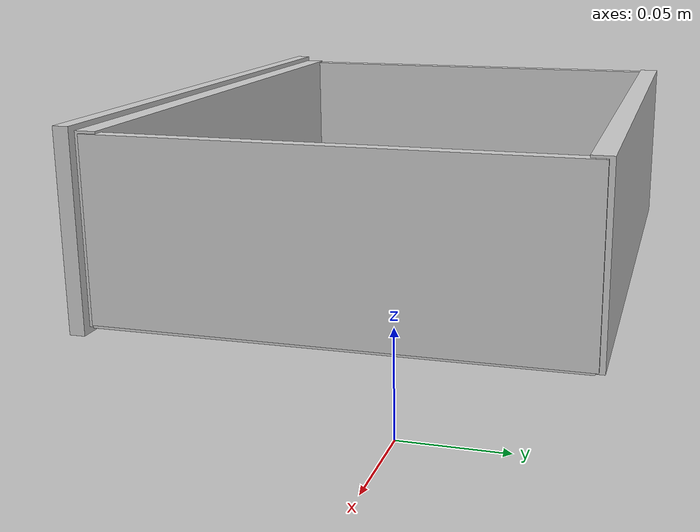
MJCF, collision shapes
<mujoco model="wooden_cabinet_middle">
  <compiler meshdir="F:/--CodeRepo/--CodeRepo/Research/___Mujoco/mujoco/mujoco/icse27/mujoco_rl_fuzz_2.0/.cache/repos/libero/libero/libero/assets/articulated_objects/wooden_cabinet/wooden_cabinet_middle" texturedir="F:/--CodeRepo/--CodeRepo/Research/___Mujoco/mujoco/mujoco/icse27/mujoco_rl_fuzz_2.0/.cache/repos/libero/libero/libero/assets/articulated_objects/wooden_cabinet/wooden_cabinet_middle" assetdir="F:/--CodeRepo/--CodeRepo/Research/___Mujoco/mujoco/mujoco/icse27/mujoco_rl_fuzz_2.0/.cache/repos/libero/libero/libero/assets/articulated_objects/wooden_cabinet/wooden_cabinet_middle"/><asset>
  <texture file="dark_fine_wood.png" name="tex-wooden_cabinet_middle" type="2d"/>
  <material name="wooden_cabinet_middle" reflectance="0.5" texrepeat="1 1" texture="tex-wooden_cabinet_middle" texuniform="false"/>
  <mesh file="visual/wooden_cabinet_middle_vis.msh" name="wooden_cabinet_middle_vis" scale="0.05 0.05 0.05"/></asset>
  <worldbody>
    <body>
      <body name="object">
      <geom solimp="0.998 0.998 0.001" solref="0.001 1" density="100" friction="0.95 0.3 0.1" type="mesh" mesh="wooden_cabinet_middle_vis" conaffinity="0" contype="0" group="1" material="wooden_cabinet_middle"/><geom solimp="0.998 0.998 0.001" solref="0.001 1" density="100" friction="0.95 0.3 0.1" type="box" pos="0.00334 -0.07524 0.11338" quat="0.50000 0.50000 -0.50000 -0.50000" size="0.00271 0.03427 0.10934" group="0" rgba="0.8 0.8 0.8 0.3"/><geom solimp="0.998 0.998 0.001" solref="0.001 1" density="100" friction="0.95 0.3 0.1" type="box" pos="0.00334 0.09077 0.11387" quat="0.50000 0.50000 0.50000 0.50000" size="0.00356 0.03214 0.10679" group="0" rgba="0.8 0.8 0.8 0.3"/><geom solimp="0.998 0.998 0.001" solref="0.001 1" density="100" friction="0.95 0.3 0.1" type="box" pos="0.00334 -0.06839 0.11387" quat="0.50000 0.50000 0.50000 0.50000" size="0.00356 0.03214 0.10679" group="0" rgba="0.8 0.8 0.8 0.3"/><geom solimp="0.998 0.998 0.001" solref="0.001 1" density="100" friction="0.95 0.3 0.1" type="box" pos="0.10894 0.01105 0.11387" quat="0.70711 0.70711 -0.00115 -0.00115" size="0.00241 0.03133 0.08148" group="0" rgba="0.8 0.8 0.8 0.3"/><geom solimp="0.998 0.998 0.001" solref="0.001 1" density="100" friction="0.95 0.3 0.1" type="box" pos="-0.10191 0.01105 0.11387" quat="0.70711 0.70711 -0.00115 -0.00115" size="0.00241 0.03165 0.08148" group="0" rgba="0.8 0.8 0.8 0.3"/><geom solimp="0.998 0.998 0.001" solref="0.001 1" density="100" friction="0.95 0.3 0.1" type="box" pos="0.00348 0.01048 0.08543" quat="0.70711 0.00000 0.70711 0.00000" size="0.00401 0.08095 0.10696" group="0" rgba="0.8 0.8 0.8 0.3"/></body>
      <site rgba="0 0 0 0" size="0.005" pos="0 0 -0.06" name="bottom_site"/>
      <site rgba="0 0 0 0" size="0.005" pos="0 0 0.04" name="top_site"/>
      <site rgba="0 0 0 0" size="0.005" pos="0.025 0.025 0" name="horizontal_radius_site"/>
    </body>
  </worldbody>
</mujoco>
